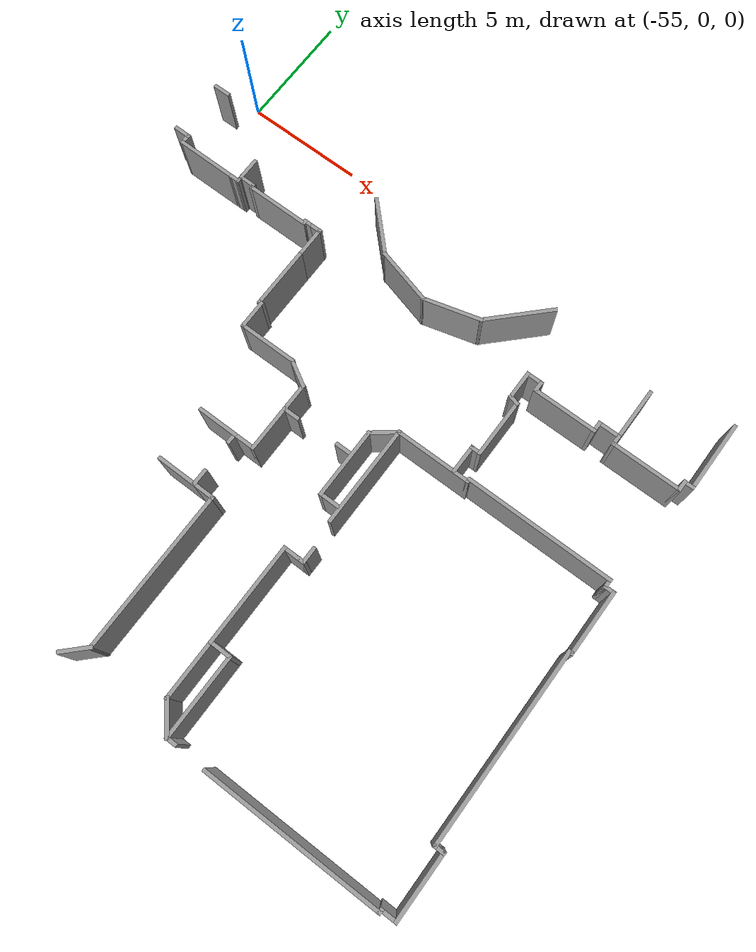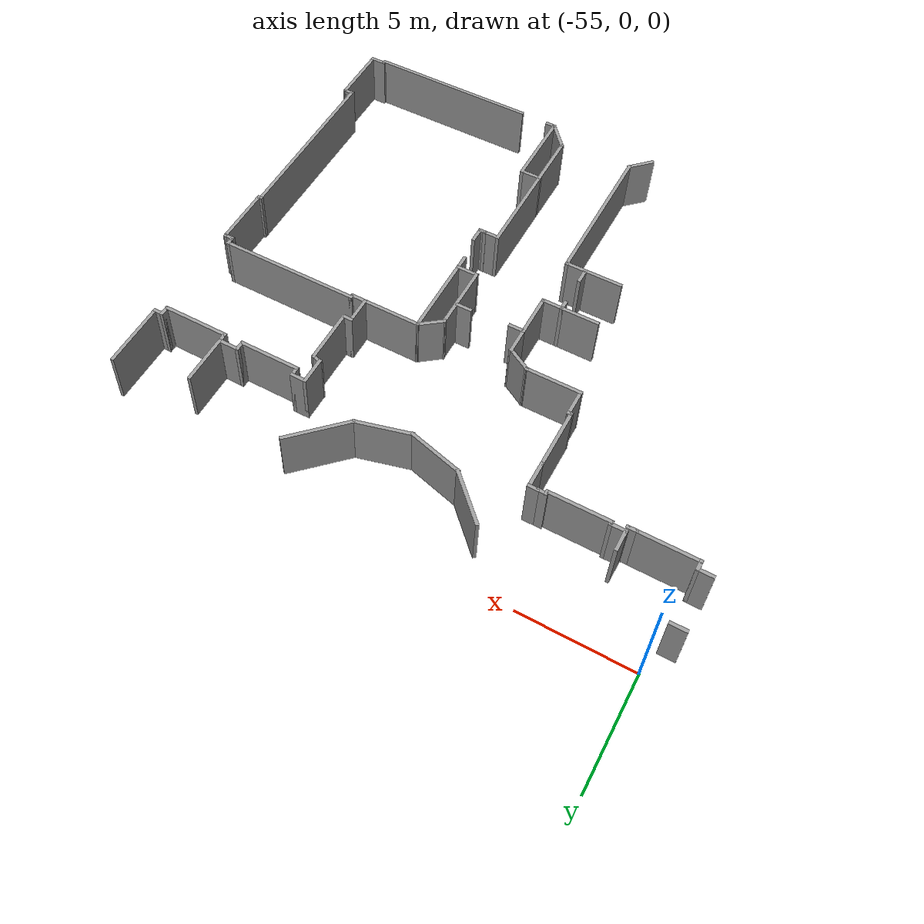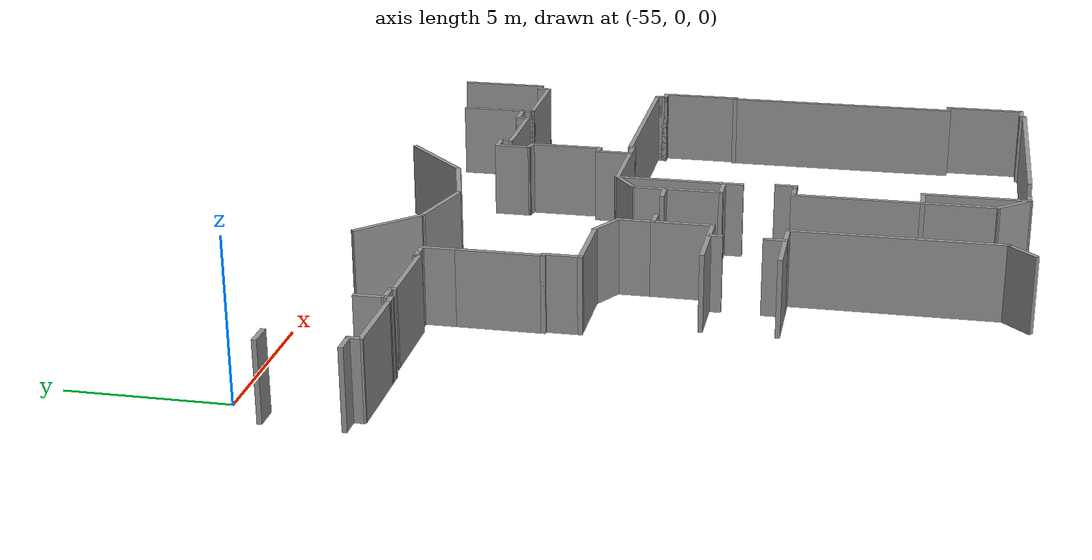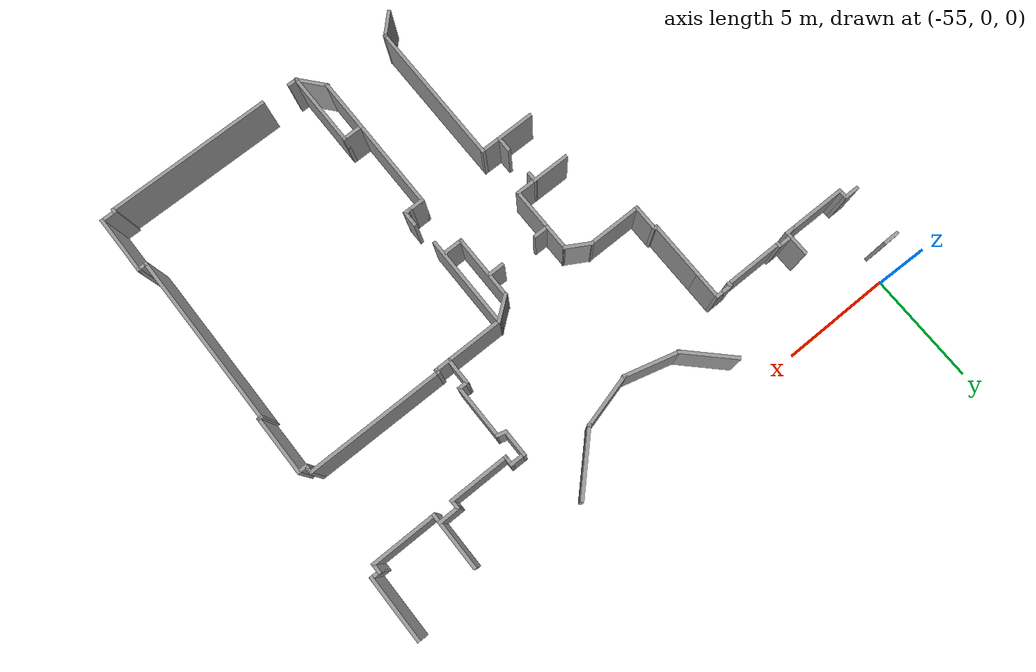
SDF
<sdf version="1.7">
 <model name="TD_n1">
  <pose>-7.14234 -2.45461 0 0 -0 0</pose>
  <link name="Wall_0">
   <collision name="Wall_0_Collision">
    <geometry><box><size>3.25 0.15 2.5</size></box></geometry>
    <pose>0 0 1.25 0 -0 0</pose>
   </collision>
   <visual name="Wall_0_Visual">
    <pose>0 0 1.25 0 -0 0</pose>
    <geometry><box><size>3.25 0.15 2.5</size></box></geometry>
    <material>
     <script><uri>file://media/materials/scripts/gazebo.material</uri><name>Gazebo/Grey</name></script>
     <ambient>1 1 1 1</ambient>
    </material>
    <meta><layer>0</layer></meta>
   </visual>
   <pose>-32.5977 -5.86838 0 0 -0 0</pose>
  </link>
  <link name="Wall_1">
   <collision name="Wall_1_Collision">
    <geometry><box><size>0.25 0.15 2.5</size></box></geometry>
    <pose>0 0 1.25 0 -0 0</pose>
   </collision>
   <visual name="Wall_1_Visual">
    <pose>0 0 1.25 0 -0 0</pose>
    <geometry><box><size>0.25 0.15 2.5</size></box></geometry>
    <material>
     <script><uri>file://media/materials/scripts/gazebo.material</uri><name>Gazebo/Grey</name></script>
     <ambient>1 1 1 1</ambient>
    </material>
    <meta><layer>0</layer></meta>
   </visual>
   <pose>-31.0477 -5.81838 0 0 -0 1.5708</pose>
  </link>
  <link name="Wall_10">
   <collision name="Wall_10_Collision">
    <geometry><box><size>0.5 0.15 2.5</size></box></geometry>
    <pose>0 0 1.25 0 -0 0</pose>
   </collision>
   <visual name="Wall_10_Visual">
    <pose>0 0 1.25 0 -0 0</pose>
    <geometry><box><size>0.5 0.15 2.5</size></box></geometry>
    <material>
     <script><uri>file://media/materials/scripts/gazebo.material</uri><name>Gazebo/Grey</name></script>
     <ambient>1 1 1 1</ambient>
    </material>
    <meta><layer>0</layer></meta>
   </visual>
   <pose>-24.5227 -16.5184 0 0 -0 0</pose>
  </link>
  <link name="Wall_102">
   <collision name="Wall_102_Collision">
    <geometry><box><size>2.5 0.15 2.5</size></box></geometry>
    <pose>0 0 1.25 0 -0 0</pose>
   </collision>
   <visual name="Wall_102_Visual">
    <pose>0 0 1.25 0 -0 0</pose>
    <geometry><box><size>2.5 0.15 2.5</size></box></geometry>
    <material>
     <script><uri>file://media/materials/scripts/gazebo.material</uri><name>Gazebo/Grey</name></script>
     <ambient>1 1 1 1</ambient>
    </material>
    <meta><layer>0</layer></meta>
   </visual>
   <pose>-37.7105 -0.793001 0 0 -0 2.87979</pose>
  </link>
  <link name="Wall_103">
   <collision name="Wall_103_Collision">
    <geometry><box><size>2.5 0.15 2.5</size></box></geometry>
    <pose>0 0 1.25 0 -0 0</pose>
   </collision>
   <visual name="Wall_103_Visual">
    <pose>0 0 1.25 0 -0 0</pose>
    <geometry><box><size>2.5 0.15 2.5</size></box></geometry>
    <material>
     <script><uri>file://media/materials/scripts/gazebo.material</uri><name>Gazebo/Grey</name></script>
     <ambient>1 1 1 1</ambient>
    </material>
    <meta><layer>0</layer></meta>
   </visual>
   <pose>-39.6763 0.341962 0 0 -0 2.35619</pose>
  </link>
  <link name="Wall_11">
   <collision name="Wall_11_Collision">
    <geometry><box><size>2.75 0.15 2.5</size></box></geometry>
    <pose>0 0 1.25 0 -0 0</pose>
   </collision>
   <visual name="Wall_11_Visual">
    <pose>0 0 1.25 0 -0 0</pose>
    <geometry><box><size>2.75 0.15 2.5</size></box></geometry>
    <material>
     <script><uri>file://media/materials/scripts/gazebo.material</uri><name>Gazebo/Grey</name></script>
     <ambient>1 1 1 1</ambient>
    </material>
    <meta><layer>0</layer></meta>
   </visual>
   <pose>-24.3477 -17.8184 0 0 -0 -1.5708</pose>
  </link>
  <link name="Wall_112">
   <collision name="Wall_112_Collision">
    <geometry><box><size>3 0.15 2.5</size></box></geometry>
    <pose>0 0 1.25 0 -0 0</pose>
   </collision>
   <visual name="Wall_112_Visual">
    <pose>0 0 1.25 0 -0 0</pose>
    <geometry><box><size>3 0.15 2.5</size></box></geometry>
    <material>
     <script><uri>file://media/materials/scripts/gazebo.material</uri><name>Gazebo/Grey</name></script>
     <ambient>1 1 1 1</ambient>
    </material>
    <meta><layer>0</layer></meta>
   </visual>
   <pose>-33.298 0.518739 0 0 -0 -2.35619</pose>
  </link>
  <link name="Wall_113">
   <collision name="Wall_113_Collision">
    <geometry><box><size>2.5 0.15 2.5</size></box></geometry>
    <pose>0 0 1.25 0 -0 0</pose>
   </collision>
   <visual name="Wall_113_Visual">
    <pose>0 0 1.25 0 -0 0</pose>
    <geometry><box><size>2.5 0.15 2.5</size></box></geometry>
    <material>
     <script><uri>file://media/materials/scripts/gazebo.material</uri><name>Gazebo/Grey</name></script>
     <ambient>1 1 1 1</ambient>
    </material>
    <meta><layer>0</layer></meta>
   </visual>
   <pose>-35.4406 -0.793001 0 0 -0 -2.87979</pose>
  </link>
  <link name="Wall_12">
   <collision name="Wall_12_Collision">
    <geometry><box><size>0.75 0.15 2.5</size></box></geometry>
    <pose>0 0 1.25 0 -0 0</pose>
   </collision>
   <visual name="Wall_12_Visual">
    <pose>0 0 1.25 0 -0 0</pose>
    <geometry><box><size>0.75 0.15 2.5</size></box></geometry>
    <material>
     <script><uri>file://media/materials/scripts/gazebo.material</uri><name>Gazebo/Grey</name></script>
     <ambient>1 1 1 1</ambient>
    </material>
    <meta><layer>0</layer></meta>
   </visual>
   <pose>-24.6477 -19.1184 0 0 -0 3.14159</pose>
  </link>
  <link name="Wall_13">
   <collision name="Wall_13_Collision">
    <geometry><box><size>0.25 0.15 2.5</size></box></geometry>
    <pose>0 0 1.25 0 -0 0</pose>
   </collision>
   <visual name="Wall_13_Visual">
    <pose>0 0 1.25 0 -0 0</pose>
    <geometry><box><size>0.25 0.15 2.5</size></box></geometry>
    <material>
     <script><uri>file://media/materials/scripts/gazebo.material</uri><name>Gazebo/Grey</name></script>
     <ambient>1 1 1 1</ambient>
    </material>
    <meta><layer>0</layer></meta>
   </visual>
   <pose>-24.9477 -19.1684 0 0 -0 -1.5708</pose>
  </link>
  <link name="Wall_14">
   <collision name="Wall_14_Collision">
    <geometry><box><size>7.5 0.15 2.5</size></box></geometry>
    <pose>0 0 1.25 0 -0 0</pose>
   </collision>
   <visual name="Wall_14_Visual">
    <pose>0 0 1.25 0 -0 0</pose>
    <geometry><box><size>7.5 0.15 2.5</size></box></geometry>
    <material>
     <script><uri>file://media/materials/scripts/gazebo.material</uri><name>Gazebo/Grey</name></script>
     <ambient>1 1 1 1</ambient>
    </material>
    <meta><layer>0</layer></meta>
   </visual>
   <pose>-28.6227 -19.2184 0 0 -0 3.14159</pose>
  </link>
  <link name="Wall_16">
   <collision name="Wall_16_Collision">
    <geometry><box><size>0.5 0.15 2.5</size></box></geometry>
    <pose>0 0 1.25 0 -0 0</pose>
   </collision>
   <visual name="Wall_16_Visual">
    <pose>0 0 1.25 0 -0 0</pose>
    <geometry><box><size>0.5 0.15 2.5</size></box></geometry>
    <material>
     <script><uri>file://media/materials/scripts/gazebo.material</uri><name>Gazebo/Grey</name></script>
     <ambient>1 1 1 1</ambient>
    </material>
    <meta><layer>0</layer></meta>
   </visual>
   <pose>-33.8173 -19.1685 0 0 -0 3.14159</pose>
  </link>
  <link name="Wall_17">
   <collision name="Wall_17_Collision">
    <geometry><box><size>3.5 0.15 2.5</size></box></geometry>
    <pose>0 0 1.25 0 -0 0</pose>
   </collision>
   <visual name="Wall_17_Visual">
    <pose>0 0 1.25 0 -0 0</pose>
    <geometry><box><size>3.5 0.15 2.5</size></box></geometry>
    <material>
     <script><uri>file://media/materials/scripts/gazebo.material</uri><name>Gazebo/Grey</name></script>
     <ambient>1 1 1 1</ambient>
    </material>
    <meta><layer>0</layer></meta>
   </visual>
   <pose>-33.9923 -17.4935 0 0 -0 1.5708</pose>
  </link>
  <link name="Wall_177">
   <collision name="Wall_177_Collision">
    <geometry><box><size>0.75 0.15 2.5</size></box></geometry>
    <pose>0 0 1.25 0 -0 0</pose>
   </collision>
   <visual name="Wall_177_Visual">
    <pose>0 0 1.25 0 -0 0</pose>
    <geometry><box><size>0.75 0.15 2.5</size></box></geometry>
    <material>
     <script><uri>file://media/materials/scripts/gazebo.material</uri><name>Gazebo/Grey</name></script>
     <ambient>1 1 1 1</ambient>
    </material>
    <meta><layer>0</layer></meta>
   </visual>
   <pose>-48.4484 1.34686 0 0 -0 3.14159</pose>
  </link>
  <link name="Wall_179">
   <collision name="Wall_179_Collision">
    <geometry><box><size>0.75 0.15 2.5</size></box></geometry>
    <pose>0 0 1.25 0 -0 0</pose>
   </collision>
   <visual name="Wall_179_Visual">
    <pose>0 0 1.25 0 -0 0</pose>
    <geometry><box><size>0.75 0.15 2.5</size></box></geometry>
    <material>
     <script><uri>file://media/materials/scripts/gazebo.material</uri><name>Gazebo/Grey</name></script>
     <ambient>1 1 1 1</ambient>
    </material>
    <meta><layer>0</layer></meta>
   </visual>
   <pose>-48.4955 -1.06143 0 0 -0 0</pose>
  </link>
  <link name="Wall_18">
   <collision name="Wall_18_Collision">
    <geometry><box><size>1 0.15 2.5</size></box></geometry>
    <pose>0 0 1.25 0 -0 0</pose>
   </collision>
   <visual name="Wall_18_Visual">
    <pose>0 0 1.25 0 -0 0</pose>
    <geometry><box><size>1 0.15 2.5</size></box></geometry>
    <material>
     <script><uri>file://media/materials/scripts/gazebo.material</uri><name>Gazebo/Grey</name></script>
     <ambient>1 1 1 1</ambient>
    </material>
    <meta><layer>0</layer></meta>
   </visual>
   <pose>-34.4173 -15.8185 0 0 -0 3.14159</pose>
  </link>
  <link name="Wall_180">
   <collision name="Wall_180_Collision">
    <geometry><box><size>0.5 0.15 2.5</size></box></geometry>
    <pose>0 0 1.25 0 -0 0</pose>
   </collision>
   <visual name="Wall_180_Visual">
    <pose>0 0 1.25 0 -0 0</pose>
    <geometry><box><size>0.5 0.15 2.5</size></box></geometry>
    <material>
     <script><uri>file://media/materials/scripts/gazebo.material</uri><name>Gazebo/Grey</name></script>
     <ambient>1 1 1 1</ambient>
    </material>
    <meta><layer>0</layer></meta>
   </visual>
   <pose>-48.1955 -1.23643 0 0 -0 -1.5708</pose>
  </link>
  <link name="Wall_181">
   <collision name="Wall_181_Collision">
    <geometry><box><size>2.63697 0.15 2.5</size></box></geometry>
    <pose>0 0 1.25 0 -0 0</pose>
   </collision>
   <visual name="Wall_181_Visual">
    <pose>0 0 1.25 0 -0 0</pose>
    <geometry><box><size>2.63697 0.15 2.5</size></box></geometry>
    <material>
     <script><uri>file://media/materials/scripts/gazebo.material</uri><name>Gazebo/Grey</name></script>
     <ambient>1 1 1 1</ambient>
    </material>
    <meta><layer>0</layer></meta>
   </visual>
   <pose>-46.952 -1.41577 0 0 -0 -0.003496</pose>
  </link>
  <link name="Wall_183">
   <collision name="Wall_183_Collision">
    <geometry><box><size>0.5 0.15 2.5</size></box></geometry>
    <pose>0 0 1.25 0 -0 0</pose>
   </collision>
   <visual name="Wall_183_Visual">
    <pose>0 0 1.25 0 -0 0</pose>
    <geometry><box><size>0.5 0.15 2.5</size></box></geometry>
    <material>
     <script><uri>file://media/materials/scripts/gazebo.material</uri><name>Gazebo/Grey</name></script>
     <ambient>1 1 1 1</ambient>
    </material>
    <meta><layer>0</layer></meta>
   </visual>
   <pose>-45.5292 -1.42012 0 0 -0 0</pose>
  </link>
  <link name="Wall_185">
   <collision name="Wall_185_Collision">
    <geometry><box><size>0.347693 0.15 2.5</size></box></geometry>
    <pose>0 0 1.25 0 -0 0</pose>
   </collision>
   <visual name="Wall_185_Visual">
    <pose>0 0 1.25 0 -0 0</pose>
    <geometry><box><size>0.347693 0.15 2.5</size></box></geometry>
    <material>
     <script><uri>file://media/materials/scripts/gazebo.material</uri><name>Gazebo/Grey</name></script>
     <ambient>1 1 1 1</ambient>
    </material>
    <meta><layer>0</layer></meta>
   </visual>
   <pose>-45.3589 -1.32128 0 0 -0 1.57458</pose>
  </link>
  <link name="Wall_187">
   <collision name="Wall_187_Collision">
    <geometry><box><size>1.75 0.15 2.5</size></box></geometry>
    <pose>0 0 1.25 0 -0 0</pose>
   </collision>
   <visual name="Wall_187_Visual">
    <pose>0 0 1.25 0 -0 0</pose>
    <geometry><box><size>1.75 0.15 2.5</size></box></geometry>
    <material>
     <script><uri>file://media/materials/scripts/gazebo.material</uri><name>Gazebo/Grey</name></script>
     <ambient>1 1 1 1</ambient>
    </material>
    <meta><layer>0</layer></meta>
   </visual>
   <pose>-39.7095 -11.8394 0 0 -0 3.14159</pose>
  </link>
  <link name="Wall_189">
   <collision name="Wall_189_Collision">
    <geometry><box><size>1.75 0.15 2.5</size></box></geometry>
    <pose>0 0 1.25 0 -0 0</pose>
   </collision>
   <visual name="Wall_189_Visual">
    <pose>0 0 1.25 0 -0 0</pose>
    <geometry><box><size>1.75 0.15 2.5</size></box></geometry>
    <material>
     <script><uri>file://media/materials/scripts/gazebo.material</uri><name>Gazebo/Grey</name></script>
     <ambient>1 1 1 1</ambient>
    </material>
    <meta><layer>0</layer></meta>
   </visual>
   <pose>-39.7067 -9.52243 0 0 -0 3.14159</pose>
  </link>
  <link name="Wall_19">
   <collision name="Wall_19_Collision">
    <geometry><box><size>2.5 0.15 2.5</size></box></geometry>
    <pose>0 0 1.25 0 -0 0</pose>
   </collision>
   <visual name="Wall_19_Visual">
    <pose>0 0 1.25 0 -0 0</pose>
    <geometry><box><size>2.5 0.15 2.5</size></box></geometry>
    <material>
     <script><uri>file://media/materials/scripts/gazebo.material</uri><name>Gazebo/Grey</name></script>
     <ambient>1 1 1 1</ambient>
    </material>
    <meta><layer>0</layer></meta>
   </visual>
   <pose>-34.8423 -16.9935 0 0 -0 -1.5708</pose>
  </link>
  <link name="Wall_2">
   <collision name="Wall_2_Collision">
    <geometry><box><size>6.25 0.15 2.5</size></box></geometry>
    <pose>0 0 1.25 0 -0 0</pose>
   </collision>
   <visual name="Wall_2_Visual">
    <pose>0 0 1.25 0 -0 0</pose>
    <geometry><box><size>6.25 0.15 2.5</size></box></geometry>
    <material>
     <script><uri>file://media/materials/scripts/gazebo.material</uri><name>Gazebo/Grey</name></script>
     <ambient>1 1 1 1</ambient>
    </material>
    <meta><layer>0</layer></meta>
   </visual>
   <pose>-27.9977 -5.76838 0 0 -0 0</pose>
  </link>
  <link name="Wall_20">
   <collision name="Wall_20_Collision">
    <geometry><box><size>1.46244 0.15 2.5</size></box></geometry>
    <pose>0 0 1.25 0 -0 0</pose>
   </collision>
   <visual name="Wall_20_Visual">
    <pose>0 0 1.25 0 -0 0</pose>
    <geometry><box><size>1.46244 0.15 2.5</size></box></geometry>
    <material>
     <script><uri>file://media/materials/scripts/gazebo.material</uri><name>Gazebo/Grey</name></script>
     <ambient>1 1 1 1</ambient>
    </material>
    <meta><layer>0</layer></meta>
   </visual>
   <pose>-34.4173 -18.6685 0 0 -0 -0.866302</pose>
  </link>
  <link name="Wall_22">
   <collision name="Wall_22_Collision">
    <geometry><box><size>4.25 0.15 2.5</size></box></geometry>
    <pose>0 0 1.25 0 -0 0</pose>
   </collision>
   <visual name="Wall_22_Visual">
    <pose>0 0 1.25 0 -0 0</pose>
    <geometry><box><size>4.25 0.15 2.5</size></box></geometry>
    <material>
     <script><uri>file://media/materials/scripts/gazebo.material</uri><name>Gazebo/Grey</name></script>
     <ambient>1 1 1 1</ambient>
    </material>
    <meta><layer>0</layer></meta>
   </visual>
   <pose>-34.8423 -13.7685 0 0 -0 1.5708</pose>
  </link>
  <link name="Wall_24">
   <collision name="Wall_24_Collision">
    <geometry><box><size>0.15 0.15 2.5</size></box></geometry>
    <pose>0 0 1.25 0 -0 0</pose>
   </collision>
   <visual name="Wall_24_Visual">
    <pose>0 0 1.25 0 -0 0</pose>
    <geometry><box><size>0.15 0.15 2.5</size></box></geometry>
    <material>
     <script><uri>file://media/materials/scripts/gazebo.material</uri><name>Gazebo/Grey</name></script>
     <ambient>1 1 1 1</ambient>
    </material>
    <meta><layer>0</layer></meta>
   </visual>
   <pose>-34.2281 -11.71 0 0 -0 0</pose>
  </link>
  <link name="Wall_28">
   <collision name="Wall_28_Collision">
    <geometry><box><size>1 0.15 2.5</size></box></geometry>
    <pose>0 0 1.25 0 -0 0</pose>
   </collision>
   <visual name="Wall_28_Visual">
    <pose>0 0 1.25 0 -0 0</pose>
    <geometry><box><size>1 0.15 2.5</size></box></geometry>
    <material>
     <script><uri>file://media/materials/scripts/gazebo.material</uri><name>Gazebo/Grey</name></script>
     <ambient>1 1 1 1</ambient>
    </material>
    <meta><layer>0</layer></meta>
   </visual>
   <pose>-34.4173 -11.7185 0 0 -0 0</pose>
  </link>
  <link name="Wall_29">
   <collision name="Wall_29_Collision">
    <geometry><box><size>0.75 0.15 2.5</size></box></geometry>
    <pose>0 0 1.25 0 -0 0</pose>
   </collision>
   <visual name="Wall_29_Visual">
    <pose>0 0 1.25 0 -0 0</pose>
    <geometry><box><size>0.75 0.15 2.5</size></box></geometry>
    <material>
     <script><uri>file://media/materials/scripts/gazebo.material</uri><name>Gazebo/Grey</name></script>
     <ambient>1 1 1 1</ambient>
    </material>
    <meta><layer>0</layer></meta>
   </visual>
   <pose>-33.9923 -11.4185 0 0 -0 1.5708</pose>
  </link>
  <link name="Wall_3">
   <collision name="Wall_3_Collision">
    <geometry><box><size>0.25 0.15 2.5</size></box></geometry>
    <pose>0 0 1.25 0 -0 0</pose>
   </collision>
   <visual name="Wall_3_Visual">
    <pose>0 0 1.25 0 -0 0</pose>
    <geometry><box><size>0.25 0.15 2.5</size></box></geometry>
    <material>
     <script><uri>file://media/materials/scripts/gazebo.material</uri><name>Gazebo/Grey</name></script>
     <ambient>1 1 1 1</ambient>
    </material>
    <meta><layer>0</layer></meta>
   </visual>
   <pose>-24.9477 -5.81838 0 0 -0 -1.5708</pose>
  </link>
  <link name="Wall_31">
   <collision name="Wall_31_Collision">
    <geometry><box><size>4.25 0.15 2.5</size></box></geometry>
    <pose>0 0 1.25 0 -0 0</pose>
   </collision>
   <visual name="Wall_31_Visual">
    <pose>0 0 1.25 0 -0 0</pose>
    <geometry><box><size>4.25 0.15 2.5</size></box></geometry>
    <material>
     <script><uri>file://media/materials/scripts/gazebo.material</uri><name>Gazebo/Grey</name></script>
     <ambient>1 1 1 1</ambient>
    </material>
    <meta><layer>0</layer></meta>
   </visual>
   <pose>-34.1477 -7.91838 0 0 -0 -1.5708</pose>
  </link>
  <link name="Wall_33">
   <collision name="Wall_33_Collision">
    <geometry><box><size>1 0.15 2.5</size></box></geometry>
    <pose>0 0 1.25 0 -0 0</pose>
   </collision>
   <visual name="Wall_33_Visual">
    <pose>0 0 1.25 0 -0 0</pose>
    <geometry><box><size>1 0.15 2.5</size></box></geometry>
    <material>
     <script><uri>file://media/materials/scripts/gazebo.material</uri><name>Gazebo/Grey</name></script>
     <ambient>1 1 1 1</ambient>
    </material>
    <meta><layer>0</layer></meta>
   </visual>
   <pose>-34.5914 -9.39863 0 0 -0 3.14159</pose>
  </link>
  <link name="Wall_34">
   <collision name="Wall_34_Collision">
    <geometry><box><size>3 0.15 2.5</size></box></geometry>
    <pose>0 0 1.25 0 -0 0</pose>
   </collision>
   <visual name="Wall_34_Visual">
    <pose>0 0 1.25 0 -0 0</pose>
    <geometry><box><size>3 0.15 2.5</size></box></geometry>
    <material>
     <script><uri>file://media/materials/scripts/gazebo.material</uri><name>Gazebo/Grey</name></script>
     <ambient>1 1 1 1</ambient>
    </material>
    <meta><layer>0</layer></meta>
   </visual>
   <pose>-35.0164 -7.97363 0 0 -0 1.5708</pose>
  </link>
  <link name="Wall_35">
   <collision name="Wall_35_Collision">
    <geometry><box><size>1.25334 0.15 2.5</size></box></geometry>
    <pose>0 0 1.25 0 -0 0</pose>
   </collision>
   <visual name="Wall_35_Visual">
    <pose>0 0 1.25 0 -0 0</pose>
    <geometry><box><size>1.25334 0.15 2.5</size></box></geometry>
    <material>
     <script><uri>file://media/materials/scripts/gazebo.material</uri><name>Gazebo/Grey</name></script>
     <ambient>1 1 1 1</ambient>
    </material>
    <meta><layer>0</layer></meta>
   </visual>
   <pose>-34.5821 -6.20851 0 0 -0 0.664339</pose>
  </link>
  <link name="Wall_38">
   <collision name="Wall_38_Collision">
    <geometry><box><size>1.25 0.15 2.5</size></box></geometry>
    <pose>0 0 1.25 0 -0 0</pose>
   </collision>
   <visual name="Wall_38_Visual">
    <pose>0 0 1.25 0 -0 0</pose>
    <geometry><box><size>1.25 0.15 2.5</size></box></geometry>
    <material>
     <script><uri>file://media/materials/scripts/gazebo.material</uri><name>Gazebo/Grey</name></script>
     <ambient>1 1 1 1</ambient>
    </material>
    <meta><layer>0</layer></meta>
   </visual>
   <pose>-38.4484 -18.8283 0 0 -0 0.785398</pose>
  </link>
  <link name="Wall_39">
   <collision name="Wall_39_Collision">
    <geometry><box><size>6.75 0.15 2.5</size></box></geometry>
    <pose>0 0 1.25 0 -0 0</pose>
   </collision>
   <visual name="Wall_39_Visual">
    <pose>0 0 1.25 0 -0 0</pose>
    <geometry><box><size>6.75 0.15 2.5</size></box></geometry>
    <material>
     <script><uri>file://media/materials/scripts/gazebo.material</uri><name>Gazebo/Grey</name></script>
     <ambient>1 1 1 1</ambient>
    </material>
    <meta><layer>0</layer></meta>
   </visual>
   <pose>-38.0595 -15.1394 0 0 -0 1.5708</pose>
  </link>
  <link name="Wall_4">
   <collision name="Wall_4_Collision">
    <geometry><box><size>0.25 0.15 2.5</size></box></geometry>
    <pose>0 0 1.25 0 -0 0</pose>
   </collision>
   <visual name="Wall_4_Visual">
    <pose>0 0 1.25 0 -0 0</pose>
    <geometry><box><size>0.25 0.15 2.5</size></box></geometry>
    <material>
     <script><uri>file://media/materials/scripts/gazebo.material</uri><name>Gazebo/Grey</name></script>
     <ambient>1 1 1 1</ambient>
    </material>
    <meta><layer>0</layer></meta>
   </visual>
   <pose>-24.9477 -5.91838 0 0 -0 -1.5708</pose>
  </link>
  <link name="Wall_40">
   <collision name="Wall_40_Collision">
    <geometry><box><size>1 0.15 2.5</size></box></geometry>
    <pose>0 0 1.25 0 -0 0</pose>
   </collision>
   <visual name="Wall_40_Visual">
    <pose>0 0 1.25 0 -0 0</pose>
    <geometry><box><size>1 0.15 2.5</size></box></geometry>
    <material>
     <script><uri>file://media/materials/scripts/gazebo.material</uri><name>Gazebo/Grey</name></script>
     <ambient>1 1 1 1</ambient>
    </material>
    <meta><layer>0</layer></meta>
   </visual>
   <pose>-38.4845 -11.8394 0 0 -0 3.14159</pose>
  </link>
  <link name="Wall_41">
   <collision name="Wall_41_Collision">
    <geometry><box><size>0.75 0.15 2.5</size></box></geometry>
    <pose>0 0 1.25 0 -0 0</pose>
   </collision>
   <visual name="Wall_41_Visual">
    <pose>0 0 1.25 0 -0 0</pose>
    <geometry><box><size>0.75 0.15 2.5</size></box></geometry>
    <material>
     <script><uri>file://media/materials/scripts/gazebo.material</uri><name>Gazebo/Grey</name></script>
     <ambient>1 1 1 1</ambient>
    </material>
    <meta><layer>0</layer></meta>
   </visual>
   <pose>-38.9095 -11.5394 0 0 -0 1.5708</pose>
  </link>
  <link name="Wall_45">
   <collision name="Wall_45_Collision">
    <geometry><box><size>0.5 0.15 2.5</size></box></geometry>
    <pose>0 0 1.25 0 -0 0</pose>
   </collision>
   <visual name="Wall_45_Visual">
    <pose>0 0 1.25 0 -0 0</pose>
    <geometry><box><size>0.5 0.15 2.5</size></box></geometry>
    <material>
     <script><uri>file://media/materials/scripts/gazebo.material</uri><name>Gazebo/Grey</name></script>
     <ambient>1 1 1 1</ambient>
    </material>
    <meta><layer>0</layer></meta>
   </visual>
   <pose>-38.9067 -9.69743 0 0 -0 1.5708</pose>
  </link>
  <link name="Wall_46">
   <collision name="Wall_46_Collision">
    <geometry><box><size>1 0.15 2.5</size></box></geometry>
    <pose>0 0 1.25 0 -0 0</pose>
   </collision>
   <visual name="Wall_46_Visual">
    <pose>0 0 1.25 0 -0 0</pose>
    <geometry><box><size>1 0.15 2.5</size></box></geometry>
    <material>
     <script><uri>file://media/materials/scripts/gazebo.material</uri><name>Gazebo/Grey</name></script>
     <ambient>1 1 1 1</ambient>
    </material>
    <meta><layer>0</layer></meta>
   </visual>
   <pose>-38.4817 -9.52243 0 0 -0 0</pose>
  </link>
  <link name="Wall_47">
   <collision name="Wall_47_Collision">
    <geometry><box><size>2 0.15 2.5</size></box></geometry>
    <pose>0 0 1.25 0 -0 0</pose>
   </collision>
   <visual name="Wall_47_Visual">
    <pose>0 0 1.25 0 -0 0</pose>
    <geometry><box><size>2 0.15 2.5</size></box></geometry>
    <material>
     <script><uri>file://media/materials/scripts/gazebo.material</uri><name>Gazebo/Grey</name></script>
     <ambient>1 1 1 1</ambient>
    </material>
    <meta><layer>0</layer></meta>
   </visual>
   <pose>-38.0567 -8.59743 0 0 -0 1.5708</pose>
  </link>
  <link name="Wall_48">
   <collision name="Wall_48_Collision">
    <geometry><box><size>0.75 0.15 2.5</size></box></geometry>
    <pose>0 0 1.25 0 -0 0</pose>
   </collision>
   <visual name="Wall_48_Visual">
    <pose>0 0 1.25 0 -0 0</pose>
    <geometry><box><size>0.75 0.15 2.5</size></box></geometry>
    <material>
     <script><uri>file://media/materials/scripts/gazebo.material</uri><name>Gazebo/Grey</name></script>
     <ambient>1 1 1 1</ambient>
    </material>
    <meta><layer>0</layer></meta>
   </visual>
   <pose>-37.7567 -7.67243 0 0 -0 0</pose>
  </link>
  <link name="Wall_5">
   <collision name="Wall_5_Collision">
    <geometry><box><size>0.25 0.15 2.5</size></box></geometry>
    <pose>0 0 1.25 0 -0 0</pose>
   </collision>
   <visual name="Wall_5_Visual">
    <pose>0 0 1.25 0 -0 0</pose>
    <geometry><box><size>0.25 0.15 2.5</size></box></geometry>
    <material>
     <script><uri>file://media/materials/scripts/gazebo.material</uri><name>Gazebo/Grey</name></script>
     <ambient>1 1 1 1</ambient>
    </material>
    <meta><layer>0</layer></meta>
   </visual>
   <pose>-24.9477 -6.01838 0 0 -0 -1.5708</pose>
  </link>
  <link name="Wall_50">
   <collision name="Wall_50_Collision">
    <geometry><box><size>0.75 0.15 2.5</size></box></geometry>
    <pose>0 0 1.25 0 -0 0</pose>
   </collision>
   <visual name="Wall_50_Visual">
    <pose>0 0 1.25 0 -0 0</pose>
    <geometry><box><size>0.75 0.15 2.5</size></box></geometry>
    <material>
     <script><uri>file://media/materials/scripts/gazebo.material</uri><name>Gazebo/Grey</name></script>
     <ambient>1 1 1 1</ambient>
    </material>
    <meta><layer>0</layer></meta>
   </visual>
   <pose>-35.3684 -7.5825 0 0 -0 0</pose>
  </link>
  <link name="Wall_52">
   <collision name="Wall_52_Collision">
    <geometry><box><size>1.25 0.15 2.5</size></box></geometry>
    <pose>0 0 1.25 0 -0 0</pose>
   </collision>
   <visual name="Wall_52_Visual">
    <pose>0 0 1.25 0 -0 0</pose>
    <geometry><box><size>1.25 0.15 2.5</size></box></geometry>
    <material>
     <script><uri>file://media/materials/scripts/gazebo.material</uri><name>Gazebo/Grey</name></script>
     <ambient>1 1 1 1</ambient>
    </material>
    <meta><layer>0</layer></meta>
   </visual>
   <pose>-38.0567 -7.12243 0 0 -0 1.5708</pose>
  </link>
  <link name="Wall_53">
   <collision name="Wall_53_Collision">
    <geometry><box><size>1.25 0.15 2.5</size></box></geometry>
    <pose>0 0 1.25 0 -0 0</pose>
   </collision>
   <visual name="Wall_53_Visual">
    <pose>0 0 1.25 0 -0 0</pose>
    <geometry><box><size>1.25 0.15 2.5</size></box></geometry>
    <material>
     <script><uri>file://media/materials/scripts/gazebo.material</uri><name>Gazebo/Grey</name></script>
     <ambient>1 1 1 1</ambient>
    </material>
    <meta><layer>0</layer></meta>
   </visual>
   <pose>-38.533 -6.29743 0 0 -0 2.61799</pose>
  </link>
  <link name="Wall_54">
   <collision name="Wall_54_Collision">
    <geometry><box><size>2.5 0.15 2.5</size></box></geometry>
    <pose>0 0 1.25 0 -0 0</pose>
   </collision>
   <visual name="Wall_54_Visual">
    <pose>0 0 1.25 0 -0 0</pose>
    <geometry><box><size>2.5 0.15 2.5</size></box></geometry>
    <material>
     <script><uri>file://media/materials/scripts/gazebo.material</uri><name>Gazebo/Grey</name></script>
     <ambient>1 1 1 1</ambient>
    </material>
    <meta><layer>0</layer></meta>
   </visual>
   <pose>-40.1843 -6.02243 0 0 -0 3.14159</pose>
  </link>
  <link name="Wall_55">
   <collision name="Wall_55_Collision">
    <geometry><box><size>1.25 0.15 2.5</size></box></geometry>
    <pose>0 0 1.25 0 -0 0</pose>
   </collision>
   <visual name="Wall_55_Visual">
    <pose>0 0 1.25 0 -0 0</pose>
    <geometry><box><size>1.25 0.15 2.5</size></box></geometry>
    <material>
     <script><uri>file://media/materials/scripts/gazebo.material</uri><name>Gazebo/Grey</name></script>
     <ambient>1 1 1 1</ambient>
    </material>
    <meta><layer>0</layer></meta>
   </visual>
   <pose>-41.3593 -5.47243 0 0 -0 1.5708</pose>
  </link>
  <link name="Wall_56">
   <collision name="Wall_56_Collision">
    <geometry><box><size>0.25 0.15 2.5</size></box></geometry>
    <pose>0 0 1.25 0 -0 0</pose>
   </collision>
   <visual name="Wall_56_Visual">
    <pose>0 0 1.25 0 -0 0</pose>
    <geometry><box><size>0.25 0.15 2.5</size></box></geometry>
    <material>
     <script><uri>file://media/materials/scripts/gazebo.material</uri><name>Gazebo/Grey</name></script>
     <ambient>1 1 1 1</ambient>
    </material>
    <meta><layer>0</layer></meta>
   </visual>
   <pose>-41.4093 -4.92243 0 0 -0 3.14159</pose>
  </link>
  <link name="Wall_57">
   <collision name="Wall_57_Collision">
    <geometry><box><size>2.75 0.15 2.5</size></box></geometry>
    <pose>0 0 1.25 0 -0 0</pose>
   </collision>
   <visual name="Wall_57_Visual">
    <pose>0 0 1.25 0 -0 0</pose>
    <geometry><box><size>2.75 0.15 2.5</size></box></geometry>
    <material>
     <script><uri>file://media/materials/scripts/gazebo.material</uri><name>Gazebo/Grey</name></script>
     <ambient>1 1 1 1</ambient>
    </material>
    <meta><layer>0</layer></meta>
   </visual>
   <pose>-41.4593 -3.62243 0 0 -0 1.5708</pose>
  </link>
  <link name="Wall_58">
   <collision name="Wall_58_Collision">
    <geometry><box><size>1.25 0.15 2.5</size></box></geometry>
    <pose>0 0 1.25 0 -0 0</pose>
   </collision>
   <visual name="Wall_58_Visual">
    <pose>0 0 1.25 0 -0 0</pose>
    <geometry><box><size>1.25 0.15 2.5</size></box></geometry>
    <material>
     <script><uri>file://media/materials/scripts/gazebo.material</uri><name>Gazebo/Grey</name></script>
     <ambient>1 1 1 1</ambient>
    </material>
    <meta><layer>0</layer></meta>
   </visual>
   <pose>-41.4593 -1.77243 0 0 -0 1.5708</pose>
  </link>
  <link name="Wall_59">
   <collision name="Wall_59_Collision">
    <geometry><box><size>0.5 0.15 2.5</size></box></geometry>
    <pose>0 0 1.25 0 -0 0</pose>
   </collision>
   <visual name="Wall_59_Visual">
    <pose>0 0 1.25 0 -0 0</pose>
    <geometry><box><size>0.5 0.15 2.5</size></box></geometry>
    <material>
     <script><uri>file://media/materials/scripts/gazebo.material</uri><name>Gazebo/Grey</name></script>
     <ambient>1 1 1 1</ambient>
    </material>
    <meta><layer>0</layer></meta>
   </visual>
   <pose>-41.6343 -1.22243 0 0 -0 3.14159</pose>
  </link>
  <link name="Wall_6">
   <collision name="Wall_6_Collision">
    <geometry><box><size>0.5 0.15 2.5</size></box></geometry>
    <pose>0 0 1.25 0 -0 0</pose>
   </collision>
   <visual name="Wall_6_Visual">
    <pose>0 0 1.25 0 -0 0</pose>
    <geometry><box><size>0.5 0.15 2.5</size></box></geometry>
    <material>
     <script><uri>file://media/materials/scripts/gazebo.material</uri><name>Gazebo/Grey</name></script>
     <ambient>1 1 1 1</ambient>
    </material>
    <meta><layer>0</layer></meta>
   </visual>
   <pose>-24.7727 -6.06838 0 0 -0 0</pose>
  </link>
  <link name="Wall_60">
   <collision name="Wall_60_Collision">
    <geometry><box><size>0.5 0.15 2.5</size></box></geometry>
    <pose>0 0 1.25 0 -0 0</pose>
   </collision>
   <visual name="Wall_60_Visual">
    <pose>0 0 1.25 0 -0 0</pose>
    <geometry><box><size>0.5 0.15 2.5</size></box></geometry>
    <material>
     <script><uri>file://media/materials/scripts/gazebo.material</uri><name>Gazebo/Grey</name></script>
     <ambient>1 1 1 1</ambient>
    </material>
    <meta><layer>0</layer></meta>
   </visual>
   <pose>-41.9843 -1.22243 0 0 -0 3.14159</pose>
  </link>
  <link name="Wall_61">
   <collision name="Wall_61_Collision">
    <geometry><box><size>0.25 0.15 2.5</size></box></geometry>
    <pose>0 0 1.25 0 -0 0</pose>
   </collision>
   <visual name="Wall_61_Visual">
    <pose>0 0 1.25 0 -0 0</pose>
    <geometry><box><size>0.25 0.15 2.5</size></box></geometry>
    <material>
     <script><uri>file://media/materials/scripts/gazebo.material</uri><name>Gazebo/Grey</name></script>
     <ambient>1 1 1 1</ambient>
    </material>
    <meta><layer>0</layer></meta>
   </visual>
   <pose>-42.1593 -1.27243 0 0 -0 -1.5708</pose>
  </link>
  <link name="Wall_62">
   <collision name="Wall_62_Collision">
    <geometry><box><size>2.75 0.15 2.5</size></box></geometry>
    <pose>0 0 1.25 0 -0 0</pose>
   </collision>
   <visual name="Wall_62_Visual">
    <pose>0 0 1.25 0 -0 0</pose>
    <geometry><box><size>2.75 0.15 2.5</size></box></geometry>
    <material>
     <script><uri>file://media/materials/scripts/gazebo.material</uri><name>Gazebo/Grey</name></script>
     <ambient>1 1 1 1</ambient>
    </material>
    <meta><layer>0</layer></meta>
   </visual>
   <pose>-43.4593 -1.32243 0 0 -0 3.14159</pose>
  </link>
  <link name="Wall_63">
   <collision name="Wall_63_Collision">
    <geometry><box><size>0.25 0.15 2.5</size></box></geometry>
    <pose>0 0 1.25 0 -0 0</pose>
   </collision>
   <visual name="Wall_63_Visual">
    <pose>0 0 1.25 0 -0 0</pose>
    <geometry><box><size>0.25 0.15 2.5</size></box></geometry>
    <material>
     <script><uri>file://media/materials/scripts/gazebo.material</uri><name>Gazebo/Grey</name></script>
     <ambient>1 1 1 1</ambient>
    </material>
    <meta><layer>0</layer></meta>
   </visual>
   <pose>-44.7593 -1.27243 0 0 -0 1.5708</pose>
  </link>
  <link name="Wall_64">
   <collision name="Wall_64_Collision">
    <geometry><box><size>0.75 0.15 2.5</size></box></geometry>
    <pose>0 0 1.25 0 -0 0</pose>
   </collision>
   <visual name="Wall_64_Visual">
    <pose>0 0 1.25 0 -0 0</pose>
    <geometry><box><size>0.75 0.15 2.5</size></box></geometry>
    <material>
     <script><uri>file://media/materials/scripts/gazebo.material</uri><name>Gazebo/Grey</name></script>
     <ambient>1 1 1 1</ambient>
    </material>
    <meta><layer>0</layer></meta>
   </visual>
   <pose>-45.0593 -1.22243 0 0 -0 3.14159</pose>
  </link>
  <link name="Wall_65">
   <collision name="Wall_65_Collision">
    <geometry><box><size>1 0.15 2.5</size></box></geometry>
    <pose>0 0 1.25 0 -0 0</pose>
   </collision>
   <visual name="Wall_65_Visual">
    <pose>0 0 1.25 0 -0 0</pose>
    <geometry><box><size>1 0.15 2.5</size></box></geometry>
    <material>
     <script><uri>file://media/materials/scripts/gazebo.material</uri><name>Gazebo/Grey</name></script>
     <ambient>1 1 1 1</ambient>
    </material>
    <meta><layer>0</layer></meta>
   </visual>
   <pose>-45.3593 -0.79743 0 0 -0 1.5708</pose>
  </link>
  <link name="Wall_69">
   <collision name="Wall_69_Collision">
    <geometry><box><size>1.25 0.15 2.5</size></box></geometry>
    <pose>0 0 1.25 0 -0 0</pose>
   </collision>
   <visual name="Wall_69_Visual">
    <pose>0 0 1.25 0 -0 0</pose>
    <geometry><box><size>1.25 0.15 2.5</size></box></geometry>
    <material>
     <script><uri>file://media/materials/scripts/gazebo.material</uri><name>Gazebo/Grey</name></script>
     <ambient>1 1 1 1</ambient>
    </material>
    <meta><layer>0</layer></meta>
   </visual>
   <pose>-31.6668 -5.2977 0 0 -0 1.5708</pose>
  </link>
  <link name="Wall_7">
   <collision name="Wall_7_Collision">
    <geometry><box><size>2.75 0.15 2.5</size></box></geometry>
    <pose>0 0 1.25 0 -0 0</pose>
   </collision>
   <visual name="Wall_7_Visual">
    <pose>0 0 1.25 0 -0 0</pose>
    <geometry><box><size>2.75 0.15 2.5</size></box></geometry>
    <material>
     <script><uri>file://media/materials/scripts/gazebo.material</uri><name>Gazebo/Grey</name></script>
     <ambient>1 1 1 1</ambient>
    </material>
    <meta><layer>0</layer></meta>
   </visual>
   <pose>-24.5977 -7.36838 0 0 -0 -1.5708</pose>
  </link>
  <link name="Wall_70">
   <collision name="Wall_70_Collision">
    <geometry><box><size>0.5 0.15 2.5</size></box></geometry>
    <pose>0 0 1.25 0 -0 0</pose>
   </collision>
   <visual name="Wall_70_Visual">
    <pose>0 0 1.25 0 -0 0</pose>
    <geometry><box><size>0.5 0.15 2.5</size></box></geometry>
    <material>
     <script><uri>file://media/materials/scripts/gazebo.material</uri><name>Gazebo/Grey</name></script>
     <ambient>1 1 1 1</ambient>
    </material>
    <meta><layer>0</layer></meta>
   </visual>
   <pose>-31.4918 -4.7477 0 0 -0 0</pose>
  </link>
  <link name="Wall_71">
   <collision name="Wall_71_Collision">
    <geometry><box><size>2.5 0.15 2.5</size></box></geometry>
    <pose>0 0 1.25 0 -0 0</pose>
   </collision>
   <visual name="Wall_71_Visual">
    <pose>0 0 1.25 0 -0 0</pose>
    <geometry><box><size>2.5 0.15 2.5</size></box></geometry>
    <material>
     <script><uri>file://media/materials/scripts/gazebo.material</uri><name>Gazebo/Grey</name></script>
     <ambient>1 1 1 1</ambient>
    </material>
    <meta><layer>0</layer></meta>
   </visual>
   <pose>-31.3168 -3.5727 0 0 -0 1.5708</pose>
  </link>
  <link name="Wall_72">
   <collision name="Wall_72_Collision">
    <geometry><box><size>0.5 0.15 2.5</size></box></geometry>
    <pose>0 0 1.25 0 -0 0</pose>
   </collision>
   <visual name="Wall_72_Visual">
    <pose>0 0 1.25 0 -0 0</pose>
    <geometry><box><size>0.5 0.15 2.5</size></box></geometry>
    <material>
     <script><uri>file://media/materials/scripts/gazebo.material</uri><name>Gazebo/Grey</name></script>
     <ambient>1 1 1 1</ambient>
    </material>
    <meta><layer>0</layer></meta>
   </visual>
   <pose>-31.4858 -2.35241 0 0 -0 2.87979</pose>
  </link>
  <link name="Wall_73">
   <collision name="Wall_73_Collision">
    <geometry><box><size>1.25 0.15 2.5</size></box></geometry>
    <pose>0 0 1.25 0 -0 0</pose>
   </collision>
   <visual name="Wall_73_Visual">
    <pose>0 0 1.25 0 -0 0</pose>
    <geometry><box><size>1.25 0.15 2.5</size></box></geometry>
    <material>
     <script><uri>file://media/materials/scripts/gazebo.material</uri><name>Gazebo/Grey</name></script>
     <ambient>1 1 1 1</ambient>
    </material>
    <meta><layer>0</layer></meta>
   </visual>
   <pose>-31.6549 -1.75712 0 0 -0 1.5708</pose>
  </link>
  <link name="Wall_74">
   <collision name="Wall_74_Collision">
    <geometry><box><size>0.75 0.15 2.5</size></box></geometry>
    <pose>0 0 1.25 0 -0 0</pose>
   </collision>
   <visual name="Wall_74_Visual">
    <pose>0 0 1.25 0 -0 0</pose>
    <geometry><box><size>0.75 0.15 2.5</size></box></geometry>
    <material>
     <script><uri>file://media/materials/scripts/gazebo.material</uri><name>Gazebo/Grey</name></script>
     <ambient>1 1 1 1</ambient>
    </material>
    <meta><layer>0</layer></meta>
   </visual>
   <pose>-31.3549 -1.20712 0 0 -0 0</pose>
  </link>
  <link name="Wall_75">
   <collision name="Wall_75_Collision">
    <geometry><box><size>0.5 0.15 2.5</size></box></geometry>
    <pose>0 0 1.25 0 -0 0</pose>
   </collision>
   <visual name="Wall_75_Visual">
    <pose>0 0 1.25 0 -0 0</pose>
    <geometry><box><size>0.5 0.15 2.5</size></box></geometry>
    <material>
     <script><uri>file://media/materials/scripts/gazebo.material</uri><name>Gazebo/Grey</name></script>
     <ambient>1 1 1 1</ambient>
    </material>
    <meta><layer>0</layer></meta>
   </visual>
   <pose>-31.0549 -1.38212 0 0 -0 -1.5708</pose>
  </link>
  <link name="Wall_76">
   <collision name="Wall_76_Collision">
    <geometry><box><size>2.75 0.15 2.5</size></box></geometry>
    <pose>0 0 1.25 0 -0 0</pose>
   </collision>
   <visual name="Wall_76_Visual">
    <pose>0 0 1.25 0 -0 0</pose>
    <geometry><box><size>2.75 0.15 2.5</size></box></geometry>
    <material>
     <script><uri>file://media/materials/scripts/gazebo.material</uri><name>Gazebo/Grey</name></script>
     <ambient>1 1 1 1</ambient>
    </material>
    <meta><layer>0</layer></meta>
   </visual>
   <pose>-29.7549 -1.55712 0 0 -0 0</pose>
  </link>
  <link name="Wall_77">
   <collision name="Wall_77_Collision">
    <geometry><box><size>0.5 0.15 2.5</size></box></geometry>
    <pose>0 0 1.25 0 -0 0</pose>
   </collision>
   <visual name="Wall_77_Visual">
    <pose>0 0 1.25 0 -0 0</pose>
    <geometry><box><size>0.5 0.15 2.5</size></box></geometry>
    <material>
     <script><uri>file://media/materials/scripts/gazebo.material</uri><name>Gazebo/Grey</name></script>
     <ambient>1 1 1 1</ambient>
    </material>
    <meta><layer>0</layer></meta>
   </visual>
   <pose>-28.4549 -1.38212 0 0 -0 1.5708</pose>
  </link>
  <link name="Wall_78">
   <collision name="Wall_78_Collision">
    <geometry><box><size>1 0.15 2.5</size></box></geometry>
    <pose>0 0 1.25 0 -0 0</pose>
   </collision>
   <visual name="Wall_78_Visual">
    <pose>0 0 1.25 0 -0 0</pose>
    <geometry><box><size>1 0.15 2.5</size></box></geometry>
    <material>
     <script><uri>file://media/materials/scripts/gazebo.material</uri><name>Gazebo/Grey</name></script>
     <ambient>1 1 1 1</ambient>
    </material>
    <meta><layer>0</layer></meta>
   </visual>
   <pose>-28.0299 -1.20712 0 0 -0 0</pose>
  </link>
  <link name="Wall_79">
   <collision name="Wall_79_Collision">
    <geometry><box><size>2.25 0.15 2.5</size></box></geometry>
    <pose>0 0 1.25 0 -0 0</pose>
   </collision>
   <visual name="Wall_79_Visual">
    <pose>0 0 1.25 0 -0 0</pose>
    <geometry><box><size>2.25 0.15 2.5</size></box></geometry>
    <material>
     <script><uri>file://media/materials/scripts/gazebo.material</uri><name>Gazebo/Grey</name></script>
     <ambient>1 1 1 1</ambient>
    </material>
    <meta><layer>0</layer></meta>
   </visual>
   <pose>-27.6049 -0.157117 0 0 -0 1.5708</pose>
  </link>
  <link name="Wall_8">
   <collision name="Wall_8_Collision">
    <geometry><box><size>0.25 0.15 2.5</size></box></geometry>
    <pose>0 0 1.25 0 -0 0</pose>
   </collision>
   <visual name="Wall_8_Visual">
    <pose>0 0 1.25 0 -0 0</pose>
    <geometry><box><size>0.25 0.15 2.5</size></box></geometry>
    <material>
     <script><uri>file://media/materials/scripts/gazebo.material</uri><name>Gazebo/Grey</name></script>
     <ambient>1 1 1 1</ambient>
    </material>
    <meta><layer>0</layer></meta>
   </visual>
   <pose>-24.6477 -8.66838 0 0 -0 3.14159</pose>
  </link>
  <link name="Wall_87">
   <collision name="Wall_87_Collision">
    <geometry><box><size>0.5 0.15 2.5</size></box></geometry>
    <pose>0 0 1.25 0 -0 0</pose>
   </collision>
   <visual name="Wall_87_Visual">
    <pose>0 0 1.25 0 -0 0</pose>
    <geometry><box><size>0.5 0.15 2.5</size></box></geometry>
    <material>
     <script><uri>file://media/materials/scripts/gazebo.material</uri><name>Gazebo/Grey</name></script>
     <ambient>1 1 1 1</ambient>
    </material>
    <meta><layer>0</layer></meta>
   </visual>
   <pose>-27.6049 -1.38212 0 0 -0 -1.5708</pose>
  </link>
  <link name="Wall_9">
   <collision name="Wall_9_Collision">
    <geometry><box><size>8 0.15 2.5</size></box></geometry>
    <pose>0 0 1.25 0 -0 0</pose>
   </collision>
   <visual name="Wall_9_Visual">
    <pose>0 0 1.25 0 -0 0</pose>
    <geometry><box><size>8 0.15 2.5</size></box></geometry>
    <material>
     <script><uri>file://media/materials/scripts/gazebo.material</uri><name>Gazebo/Grey</name></script>
     <ambient>1 1 1 1</ambient>
    </material>
    <meta><layer>0</layer></meta>
   </visual>
   <pose>-24.6977 -12.5934 0 0 -0 -1.5708</pose>
  </link>
  <link name="Wall_94">
   <collision name="Wall_94_Collision">
    <geometry><box><size>3 0.15 2.5</size></box></geometry>
    <pose>0 0 1.25 0 -0 0</pose>
   </collision>
   <visual name="Wall_94_Visual">
    <pose>0 0 1.25 0 -0 0</pose>
    <geometry><box><size>3 0.15 2.5</size></box></geometry>
    <material>
     <script><uri>file://media/materials/scripts/gazebo.material</uri><name>Gazebo/Grey</name></script>
     <ambient>1 1 1 1</ambient>
    </material>
    <meta><layer>0</layer></meta>
   </visual>
   <pose>-26.1799 -1.55712 0 0 -0 0</pose>
  </link>
  <link name="Wall_95">
   <collision name="Wall_95_Collision">
    <geometry><box><size>0.5 0.15 2.5</size></box></geometry>
    <pose>0 0 1.25 0 -0 0</pose>
   </collision>
   <visual name="Wall_95_Visual">
    <pose>0 0 1.25 0 -0 0</pose>
    <geometry><box><size>0.5 0.15 2.5</size></box></geometry>
    <material>
     <script><uri>file://media/materials/scripts/gazebo.material</uri><name>Gazebo/Grey</name></script>
     <ambient>1 1 1 1</ambient>
    </material>
    <meta><layer>0</layer></meta>
   </visual>
   <pose>-24.7549 -1.38212 0 0 -0 1.5708</pose>
  </link>
  <link name="Wall_96">
   <collision name="Wall_96_Collision">
    <geometry><box><size>0.5 0.15 2.5</size></box></geometry>
    <pose>0 0 1.25 0 -0 0</pose>
   </collision>
   <visual name="Wall_96_Visual">
    <pose>0 0 1.25 0 -0 0</pose>
    <geometry><box><size>0.5 0.15 2.5</size></box></geometry>
    <material>
     <script><uri>file://media/materials/scripts/gazebo.material</uri><name>Gazebo/Grey</name></script>
     <ambient>1 1 1 1</ambient>
    </material>
    <meta><layer>0</layer></meta>
   </visual>
   <pose>-24.5799 -1.20712 0 0 -0 0</pose>
  </link>
  <link name="Wall_97">
   <collision name="Wall_97_Collision">
    <geometry><box><size>3 0.15 2.5</size></box></geometry>
    <pose>0 0 1.25 0 -0 0</pose>
   </collision>
   <visual name="Wall_97_Visual">
    <pose>0 0 1.25 0 -0 0</pose>
    <geometry><box><size>3 0.15 2.5</size></box></geometry>
    <material>
     <script><uri>file://media/materials/scripts/gazebo.material</uri><name>Gazebo/Grey</name></script>
     <ambient>1 1 1 1</ambient>
    </material>
    <meta><layer>0</layer></meta>
   </visual>
   <pose>-24.4049 0.217883 0 0 -0 1.5708</pose>
  </link>
  <static>1</static>
 </model>
</sdf>
